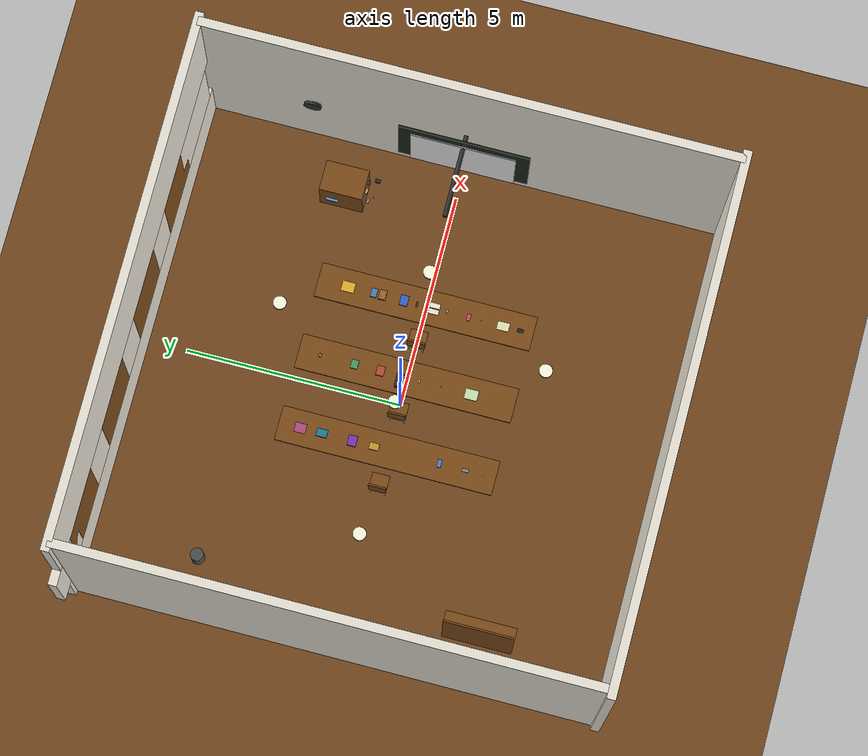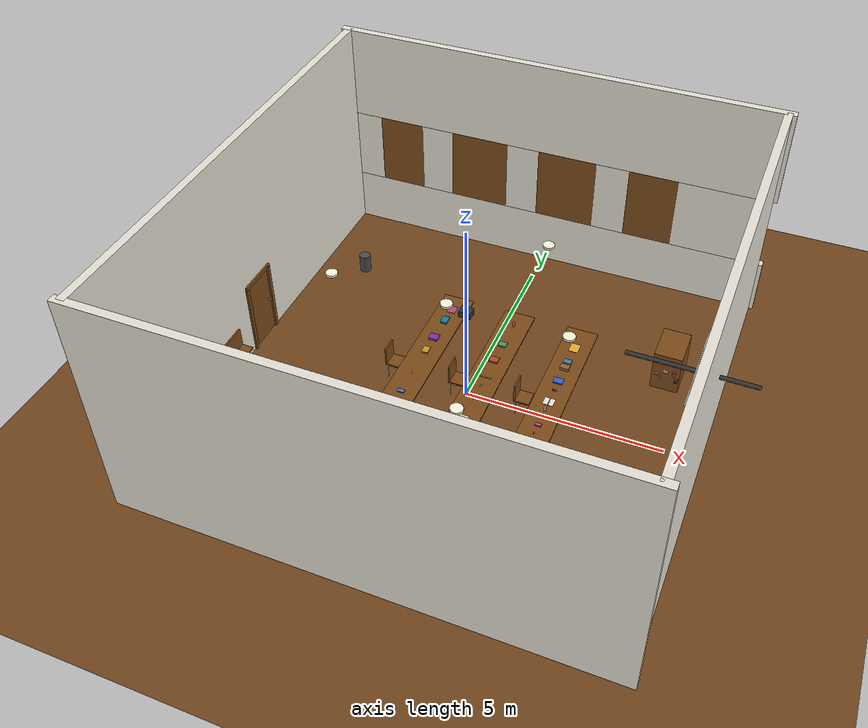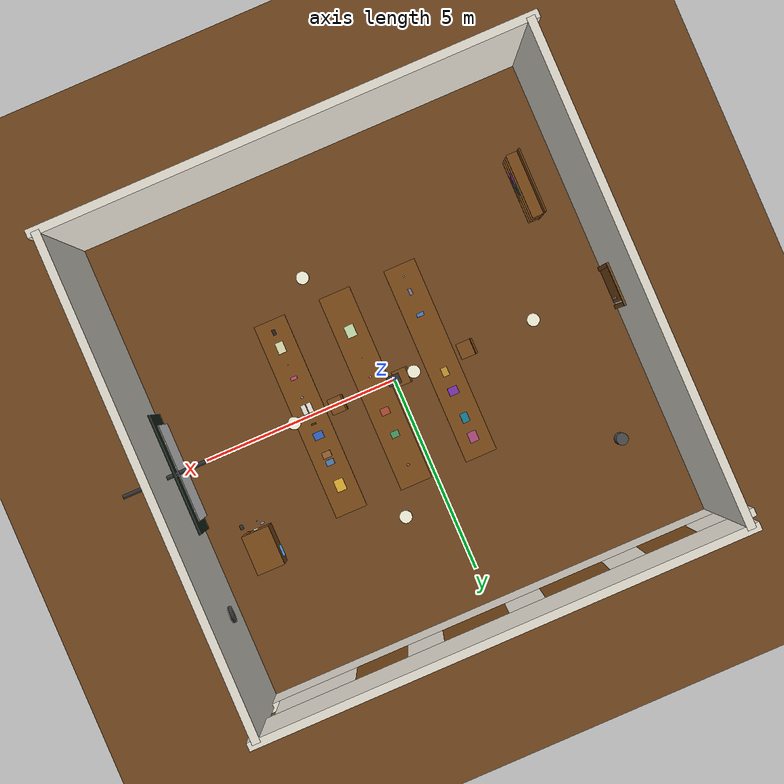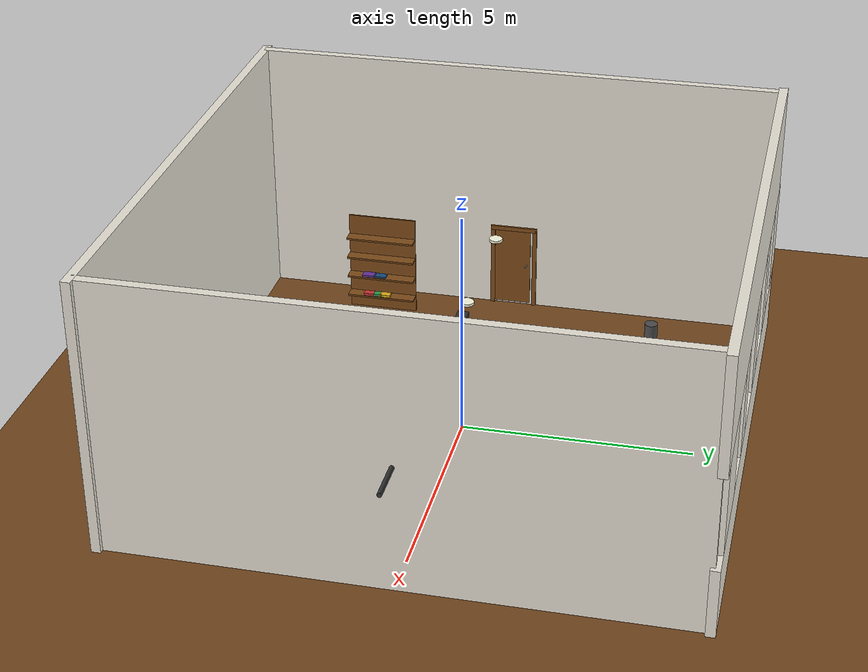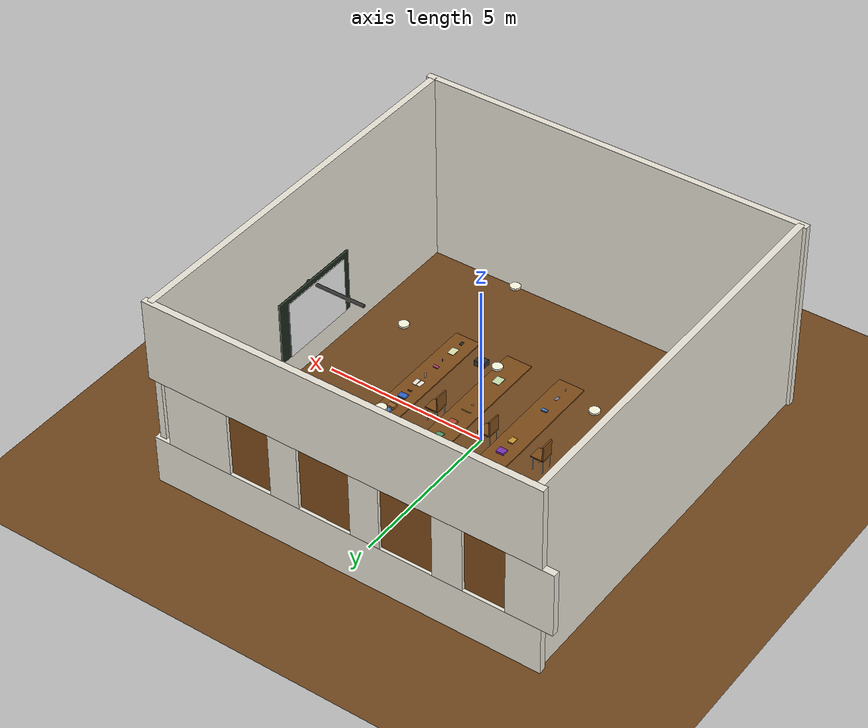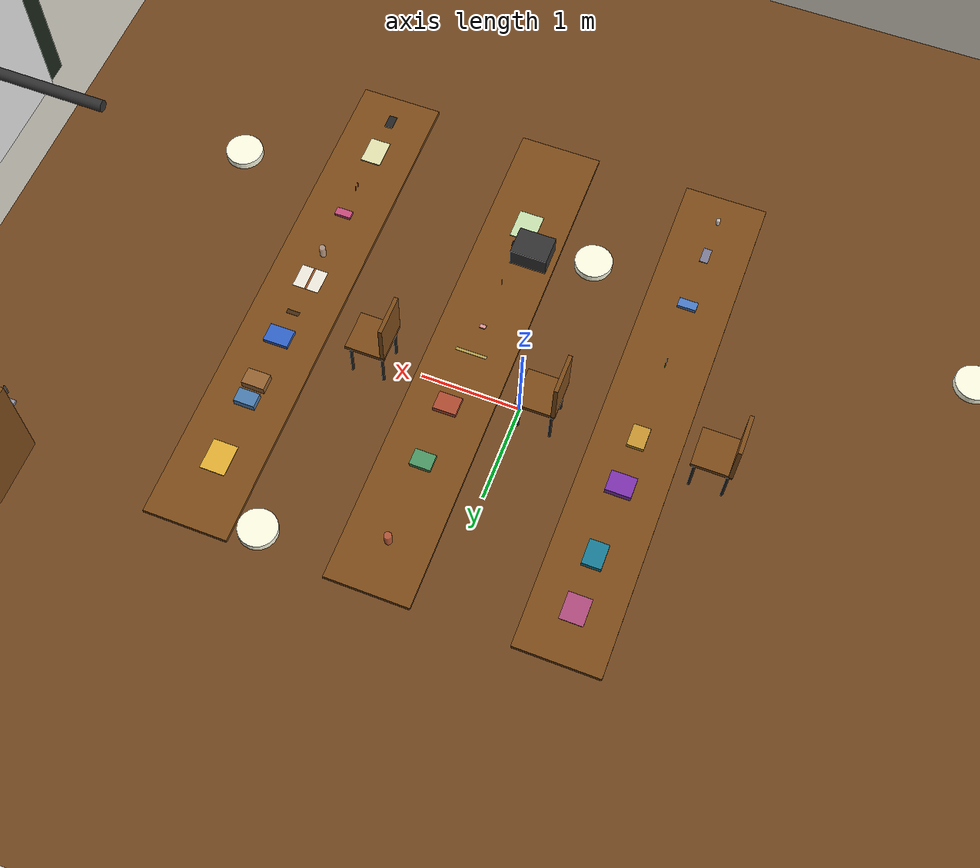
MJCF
<mujoco model="Classroom_Final_Fixed">
    <compiler angle="degree" coordinate="local" inertiafromgeom="true"/>
    <option timestep="0.005" gravity="0 0 -9.81"/>

    <visual>
        <quality shadowsize="8192" offsamples="8"/>
        <rgba haze="0.4 0.35 0.3 1"/>
        <global azimuth="150" elevation="-25"/>
    </visual>

    <asset>
        <texture name="tex_floor" type="2d" builtin="checker" rgb1="0.5 0.35 0.2" rgb2="0.45 0.3 0.15" width="512" height="512"/>
        <texture name="tex_wood" type="cube" builtin="flat" rgb1="0.5 0.3 0.1" width="512" height="512"/>
        <texture name="tex_wood_floor" type="2d" builtin="flat" rgb1="0.45 0.28 0.12" width="512" height="512" mark="edge" markrgb="0.35 0.22 0.1"/>
        <material name="mat_floor" texture="tex_wood_floor" texrepeat="8 8" reflectance="0.05" shininess="0.2"/>
        <material name="mat_wood" texture="tex_wood" reflectance="0.02" shininess="0.1"/>
        <material name="mat_lamp" rgba="1 1 0.9 1" emission="1"/>
        <material name="mat_blackboard" rgba="0.1 0.15 0.1 1" shininess="0.3"/>
        <material name="mat_screen" rgba="0.95 0.95 0.95 1" reflectance="0.1"/>
        <material name="mat_metal" rgba="0.6 0.6 0.65 1" shininess="0.8" reflectance="0.3"/>
        <material name="mat_plastic" rgba="0.2 0.2 0.2 1" shininess="0.5"/>
        <material name="mat_wall" rgba="0.92 0.90 0.85 1" shininess="0.1"/>
        <material name="mat_glass" rgba="0.7 0.85 0.95 0.4" shininess="0.8" reflectance="0.2"/>
    </asset>

    <worldbody>
        <light directional="true" pos="-5 8 3" dir="1 -0.8 -0.4" diffuse="0.8 0.5 0.2" castshadow="true"/>
        <light directional="true" pos="10 -5 8" dir="-1 0.5 -0.8" diffuse="0.6 0.7 0.8" castshadow="false"/>

        <geom name="floor" size="10 10 0.1" type="plane" material="mat_floor"/>

        <!-- 天花板灯具 -->
        <body name="lamp_1" pos="2.5 0 2.8">
            <geom type="cylinder" size="0.15 0.03" material="mat_lamp"/>
            <light name="light_1" pos="0 0 -0.1" dir="0 0 -1" diffuse="0.6 0.6 0.5" cutoff="45" castshadow="true"/>
        </body>
        <body name="lamp_2" pos="-0.5 0 2.8">
            <geom type="cylinder" size="0.15 0.03" material="mat_lamp"/>
            <light name="light_2" pos="0 0 -0.1" dir="0 0 -1" diffuse="0.6 0.6 0.5" cutoff="45" castshadow="true"/>
        </body>
        <body name="lamp_3" pos="-3.5 0 2.8">
            <geom type="cylinder" size="0.15 0.03" material="mat_lamp"/>
            <light name="light_3" pos="0 0 -0.1" dir="0 0 -1" diffuse="0.6 0.6 0.5" cutoff="45" castshadow="true"/>
        </body>
        <body name="lamp_4" pos="1.0 3 2.8">
            <geom type="cylinder" size="0.15 0.03" material="mat_lamp"/>
            <light name="light_4" pos="0 0 -0.1" dir="0 0 -1" diffuse="0.6 0.6 0.5" cutoff="45" castshadow="true"/>
        </body>
        <body name="lamp_5" pos="1.0 -3 2.8">
            <geom type="cylinder" size="0.15 0.03" material="mat_lamp"/>
            <light name="light_5" pos="0 0 -0.1" dir="0 0 -1" diffuse="0.6 0.6 0.5" cutoff="45" castshadow="true"/>
        </body>

        <!-- 墙壁 -->
        <!-- 前墙（讲台侧，带黑板） -->
        <geom name="front_wall" type="box" size="0.1 6 3" pos="5.8 0 3" material="mat_wall"/>

        <!-- 后墙（学生后面） -->
        <geom name="back_wall" type="box" size="0.1 6 3" pos="-5.8 0 3" material="mat_wall"/>

        <!-- 门框 -->
        <geom name="door_frame_left" type="box" size="0.1 0.05 1.0" pos="-5.75 -0.5 1.0" material="mat_wood"/>
        <geom name="door_frame_right" type="box" size="0.1 0.05 1.0" pos="-5.75 0.5 1.0" material="mat_wood"/>
        <geom name="door_frame_top" type="box" size="0.1 0.55 0.05" pos="-5.75 0 2.0" material="mat_wood"/>

        <!-- 可开关的木门 -->
        <body name="wooden_door" pos="-5.7 -0.5 0.05">
            <joint name="door_hinge" type="hinge" axis="0 0 1" pos="0 0 0" range="0 120" damping="2"/>
            <geom name="door_panel" type="box" size="0.03 0.45 0.95" pos="0 0.45 0.95" material="mat_wood" mass="15"/>
            <geom name="door_handle" type="cylinder" size="0.02 0.08" pos="0.05 0.8 1.0" quat="0.707 0 0.707 0" material="mat_metal" mass="0.3"/>
        </body>

        <!-- 左墙 -->
        <geom name="left_wall" type="box" size="6 0.1 3" pos="0 -6 3" material="mat_wall"/>

        <!-- 右墙（分段，为窗户留空） -->
        <!-- 右墙下段（窗户下方，从地面到窗户底部） -->
        <geom name="right_wall_bottom" type="box" size="6 0.1 0.75" pos="0 6 0.75" material="mat_wall"/>

        <!-- 右墙上段（窗户上方，从窗户顶部到天花板） -->
        <geom name="right_wall_top" type="box" size="6 0.1 1.25" pos="0 6 4.75" material="mat_wall"/>

        <!-- 窗户之间的墙段 -->
        <geom name="right_wall_segment1" type="box" size="1.0 0.1 1.0" pos="4.5 6 2.5" material="mat_wall"/>
        <geom name="right_wall_segment2" type="box" size="0.45 0.1 1.0" pos="1.75 6 2.5" material="mat_wall"/>
        <geom name="right_wall_segment3" type="box" size="0.45 0.1 1.0" pos="-0.75 6 2.5" material="mat_wall"/>
        <geom name="right_wall_segment4" type="box" size="0.45 0.1 1.0" pos="-3.25 6 2.5" material="mat_wall"/>
        <geom name="right_wall_segment5" type="box" size="0.7 0.1 1.0" pos="-5.65 6 2.5" material="mat_wall"/>

        <!-- 窗户（在右墙上） -->
        <!-- 窗户1 -->
        <geom name="window_frame_1" type="box" size="0.8 0.05 1.0" pos="3 5.95 2.5" material="mat_wood"/>
        <geom name="window_glass_1" type="box" size="0.75 0.02 0.95" pos="3 5.95 2.5" material="mat_glass" contype="0" conaffinity="0"/>
        <light name="window_light_1" pos="3 6.5 2.5" dir="0 -1 0" diffuse="0.5 0.6 0.7" cutoff="60" castshadow="false"/>

        <!-- 窗户2 -->
        <geom name="window_frame_2" type="box" size="0.8 0.05 1.0" pos="0.5 5.95 2.5" material="mat_wood"/>
        <geom name="window_glass_2" type="box" size="0.75 0.02 0.95" pos="0.5 5.95 2.5" material="mat_glass" contype="0" conaffinity="0"/>
        <light name="window_light_2" pos="0.5 6.5 2.5" dir="0 -1 0" diffuse="0.5 0.6 0.7" cutoff="60" castshadow="false"/>

        <!-- 窗户3 -->
        <geom name="window_frame_3" type="box" size="0.8 0.05 1.0" pos="-2 5.95 2.5" material="mat_wood"/>
        <geom name="window_glass_3" type="box" size="0.75 0.02 0.95" pos="-2 5.95 2.5" material="mat_glass" contype="0" conaffinity="0"/>
        <light name="window_light_3" pos="-2 6.5 2.5" dir="0 -1 0" diffuse="0.5 0.6 0.7" cutoff="60" castshadow="false"/>

        <!-- 窗户4 -->
        <geom name="window_frame_4" type="box" size="0.8 0.05 1.0" pos="-4.5 5.95 2.5" material="mat_wood"/>
        <geom name="window_glass_4" type="box" size="0.75 0.02 0.95" pos="-4.5 5.95 2.5" material="mat_glass" contype="0" conaffinity="0"/>
        <light name="window_light_4" pos="-4.5 6.5 2.5" dir="0 -1 0" diffuse="0.5 0.6 0.7" cutoff="60" castshadow="false"/>

        <geom name="podium" type="box" size="0.35 0.5 0.55" pos="4.5 2.5 0.55" material="mat_wood"/>
        <geom name="desk_1" type="box" size="0.4 2.5 0.02" pos="2.2 0 0.75" material="mat_wood"/>
        <geom name="desk_2" type="box" size="0.4 2.5 0.02" pos="0.5 0 0.75" material="mat_wood"/>
        <geom name="desk_3" type="box" size="0.4 2.5 0.02" pos="-1.2 0 0.75" material="mat_wood"/>

        <body name="chair_interactive" pos="1.5 0 0">
            <freejoint/>
            <geom name="seat" type="box" size="0.2 0.2 0.02" pos="0 0 0.45" material="mat_wood" mass="2"/>
            <geom name="backrest" type="box" size="0.02 0.2 0.25" pos="-0.18 0 0.7" material="mat_wood" mass="1"/>
            <geom name="leg1" type="cylinder" size="0.015 0.22" pos="0.16 0.16 0.22" rgba="0.1 0.1 0.1 1" mass="0.3"/>
            <geom name="leg2" type="cylinder" size="0.015 0.22" pos="-0.16 0.16 0.22" rgba="0.1 0.1 0.1 1" mass="0.3"/>
            <geom name="leg3" type="cylinder" size="0.015 0.22" pos="0.16 -0.16 0.22" rgba="0.1 0.1 0.1 1" mass="0.3"/>
            <geom name="leg4" type="cylinder" size="0.015 0.22" pos="-0.16 -0.16 0.22" rgba="0.1 0.1 0.1 1" mass="0.3"/>
        </body>

        <body name="chair_2" pos="-0.2 0 0">
            <freejoint/>
            <geom name="seat2" type="box" size="0.2 0.2 0.02" pos="0 0 0.45" material="mat_wood" mass="2"/>
            <geom name="backrest2" type="box" size="0.02 0.2 0.25" pos="-0.18 0 0.7" material="mat_wood" mass="1"/>
            <geom name="leg2_1" type="cylinder" size="0.015 0.22" pos="0.16 0.16 0.22" rgba="0.1 0.1 0.1 1" mass="0.3"/>
            <geom name="leg2_2" type="cylinder" size="0.015 0.22" pos="-0.16 0.16 0.22" rgba="0.1 0.1 0.1 1" mass="0.3"/>
            <geom name="leg2_3" type="cylinder" size="0.015 0.22" pos="0.16 -0.16 0.22" rgba="0.1 0.1 0.1 1" mass="0.3"/>
            <geom name="leg2_4" type="cylinder" size="0.015 0.22" pos="-0.16 -0.16 0.22" rgba="0.1 0.1 0.1 1" mass="0.3"/>
        </body>

        <body name="chair_3" pos="-1.9 0 0">
            <freejoint/>
            <geom name="seat3" type="box" size="0.2 0.2 0.02" pos="0 0 0.45" material="mat_wood" mass="2"/>
            <geom name="backrest3" type="box" size="0.02 0.2 0.25" pos="-0.18 0 0.7" material="mat_wood" mass="1"/>
            <geom name="leg3_1" type="cylinder" size="0.015 0.22" pos="0.16 0.16 0.22" rgba="0.1 0.1 0.1 1" mass="0.3"/>
            <geom name="leg3_2" type="cylinder" size="0.015 0.22" pos="-0.16 0.16 0.22" rgba="0.1 0.1 0.1 1" mass="0.3"/>
            <geom name="leg3_3" type="cylinder" size="0.015 0.22" pos="0.16 -0.16 0.22" rgba="0.1 0.1 0.1 1" mass="0.3"/>
            <geom name="leg3_4" type="cylinder" size="0.015 0.22" pos="-0.16 -0.16 0.22" rgba="0.1 0.1 0.1 1" mass="0.3"/>
        </body>

        <body name="book" pos="2.2 0.5 0.82">
            <freejoint/>
            <geom size="0.12 0.09 0.02" rgba="0.2 0.4 0.8 1" type="box" mass="0.5"/>
        </body>

        <!-- 可翻开的书（带动画效果） -->
        <body name="open_book" pos="2.2 -0.2 0.78">
            <freejoint/>
            <!-- 书脊和底座 -->
            <geom name="book_spine" type="box" size="0.01 0.12 0.001" pos="0 0 0" rgba="0.6 0.3 0.1 1" mass="0.1"/>

            <!-- 左页 -->
            <body name="left_page" pos="-0.07 0 0.001">
                <joint name="left_page_hinge" type="hinge" axis="0 1 0" pos="0.06 0 0" range="-90 90" damping="0.1"/>
                <geom name="left_page_geom" type="box" size="0.06 0.12 0.0005" pos="0 0 0" rgba="0.95 0.93 0.88 1" mass="0.05"/>
            </body>

            <!-- 右页 -->
            <body name="right_page" pos="0.07 0 0.001">
                <joint name="right_page_hinge" type="hinge" axis="0 1 0" pos="-0.06 0 0" range="-90 90" damping="0.1"/>
                <geom name="right_page_geom" type="box" size="0.06 0.12 0.0005" pos="0 0 0" rgba="0.95 0.93 0.88 1" mass="0.05"/>
            </body>
        </body>

        <body name="cup" pos="2.2 -0.5 0.82">
            <freejoint/>
            <geom size="0.03 0.07" rgba="0.9 0.9 1 0.5" type="cylinder" mass="0.2"/>
        </body>

        <!-- 黑板 -->
        <geom name="blackboard" type="box" size="0.02 1.5 1.0" pos="5.5 0 2.0" material="mat_blackboard"/>

        <!-- 投影幕布 (卷起状态) -->
        <geom name="screen_case" type="cylinder" size="0.05 1.5" pos="5.3 0 2.8" quat="0.707 0 0.707 0" material="mat_plastic"/>

        <!-- 投影幕布 (展开状态，固定在墙上) -->
        <body name="projector_screen" pos="5.4 0 2.0">
            <geom name="screen_surface" type="box" size="0.01 1.2 0.9" material="mat_screen" mass="1.5"/>
        </body>

        <!-- 投影仪 (固定在天花板) -->
        <body name="projector" pos="0 0 2.7">
            <geom name="projector_body" type="box" size="0.15 0.12 0.08" material="mat_plastic" mass="2.5"/>
            <geom name="projector_lens" type="cylinder" size="0.03 0.02" pos="0.15 0 0" quat="0.707 0 0.707 0" rgba="0.1 0.1 0.15 0.8" mass="0.1"/>
        </body>

        <!-- 讲台上的笔记本电脑 -->
        <body name="laptop" pos="4.5 2.5 0.62">
            <freejoint/>
            <geom name="laptop_base" type="box" size="0.15 0.1 0.01" rgba="0.15 0.15 0.15 1" mass="0.8"/>
            <geom name="laptop_screen" type="box" size="0.15 0.005 0.12" pos="0 -0.08 0.11" quat="0.966 0.259 0 0" rgba="0.1 0.1 0.1 1" mass="0.4"/>
        </body>

        <!-- 书架 -->
        <geom name="bookshelf_back" type="box" size="0.02 0.8 1.2" pos="-4.8 -3.0 1.2" material="mat_wood"/>
        <geom name="bookshelf_bottom" type="box" size="0.15 0.8 0.02" pos="-4.65 -3.0 0.4" material="mat_wood"/>
        <geom name="bookshelf_mid1" type="box" size="0.15 0.8 0.02" pos="-4.65 -3.0 0.9" material="mat_wood"/>
        <geom name="bookshelf_mid2" type="box" size="0.15 0.8 0.02" pos="-4.65 -3.0 1.4" material="mat_wood"/>
        <geom name="bookshelf_top" type="box" size="0.15 0.8 0.02" pos="-4.65 -3.0 1.9" material="mat_wood"/>

        <!-- 书架上的书籍 -->
        <body name="book_2" pos="-4.6 -3.3 0.45">
            <freejoint/>
            <geom type="box" size="0.08 0.12 0.03" rgba="0.8 0.2 0.2 1" mass="0.6"/>
        </body>
        <body name="book_3" pos="-4.6 -3.1 0.45">
            <freejoint/>
            <geom type="box" size="0.08 0.12 0.03" rgba="0.2 0.6 0.3 1" mass="0.5"/>
        </body>
        <body name="book_4" pos="-4.6 -2.9 0.45">
            <freejoint/>
            <geom type="box" size="0.08 0.12 0.03" rgba="0.9 0.7 0.1 1" mass="0.55"/>
        </body>
        <body name="book_5" pos="-4.6 -3.3 0.95">
            <freejoint/>
            <geom type="box" size="0.1 0.14 0.025" rgba="0.4 0.2 0.6 1" mass="0.7"/>
        </body>
        <body name="book_6" pos="-4.6 -3.0 0.95">
            <freejoint/>
            <geom type="box" size="0.09 0.13 0.02" rgba="0.1 0.3 0.5 1" mass="0.45"/>
        </body>

        <!-- 桌面上更多书籍 -->
        <body name="book_stack_1" pos="2.2 1.0 0.82">
            <freejoint/>
            <geom type="box" size="0.11 0.08 0.04" rgba="0.6 0.4 0.2 1" mass="0.8"/>
        </body>
        <body name="book_stack_2" pos="2.2 1.2 0.82">
            <freejoint/>
            <geom type="box" size="0.10 0.07 0.035" rgba="0.3 0.5 0.7 1" mass="0.6"/>
        </body>

        <!-- 文具用品 -->
        <body name="pencil_case" pos="2.2 -1.0 0.78">
            <freejoint/>
            <geom type="box" size="0.08 0.04 0.02" rgba="0.8 0.3 0.5 1" mass="0.15"/>
        </body>

        <body name="pen_1" pos="2.2 -1.3 0.77">
            <freejoint/>
            <geom type="cylinder" size="0.004 0.07" rgba="0.1 0.1 0.8 1" mass="0.01"/>
        </body>

        <body name="pen_2" pos="2.2 -1.35 0.77">
            <freejoint/>
            <geom type="cylinder" size="0.004 0.07" rgba="0.8 0.1 0.1 1" mass="0.01"/>
        </body>

        <body name="notebook" pos="2.2 -1.8 0.77">
            <freejoint/>
            <geom type="box" size="0.10 0.14 0.01" rgba="0.9 0.9 0.7 1" mass="0.3"/>
        </body>

        <!-- 讲台上的教学用品 -->
        <body name="chalk_box" pos="4.5 2.0 0.62">
            <freejoint/>
            <geom type="box" size="0.06 0.04 0.025" rgba="0.9 0.85 0.7 1" mass="0.1"/>
        </body>

        <body name="eraser" pos="4.3 2.3 0.58">
            <freejoint/>
            <geom type="box" size="0.05 0.03 0.015" rgba="0.95 0.95 0.8 1" mass="0.05"/>
        </body>

        <body name="marker_1" pos="4.4 1.8 0.57">
            <freejoint/>
            <geom type="cylinder" size="0.008 0.06" rgba="0.1 0.1 0.1 1" mass="0.02"/>
        </body>

        <!-- 水瓶 -->
        <body name="water_bottle" pos="4.7 2.5 0.58">
            <freejoint/>
            <geom name="bottle_body" type="cylinder" size="0.035 0.10" rgba="0.7 0.9 1.0 0.6" mass="0.5"/>
            <geom name="bottle_cap" type="cylinder" size="0.025 0.015" pos="0 0 0.115" rgba="0.2 0.4 0.8 1" mass="0.02"/>
        </body>

        <!-- 垃圾桶 -->
        <body name="trash_bin" pos="-4.5 3.5 0.25">
            <freejoint/>
            <geom type="cylinder" size="0.15 0.25" rgba="0.3 0.3 0.3 1" mass="1.5"/>
        </body>

        <!-- 时钟 (挂在墙上) -->
        <geom name="clock" type="cylinder" size="0.2 0.03" pos="5.6 3.5 2.5" quat="0.707 0 0.707 0" material="mat_plastic"/>
        <geom name="clock_face" type="cylinder" size="0.18 0.01" pos="5.65 3.5 2.5" quat="0.707 0 0.707 0" rgba="1 1 1 1"/>

        <!-- 文件夹 -->
        <body name="folder_1" pos="2.2 1.8 0.77">
            <freejoint/>
            <geom type="box" size="0.12 0.15 0.005" rgba="0.9 0.7 0.2 1" mass="0.2"/>
        </body>

        <body name="folder_2" pos="4.2 2.7 0.57">
            <freejoint/>
            <geom type="box" size="0.11 0.14 0.005" rgba="0.3 0.6 0.9 1" mass="0.18"/>
        </body>

        <!-- 笔筒 -->
        <body name="pen_holder" pos="4.7 2.0 0.58">
            <freejoint/>
            <geom type="cylinder" size="0.04 0.06" rgba="0.6 0.3 0.2 1" mass="0.3"/>
        </body>

        <!-- 计算器 -->
        <body name="calculator" pos="2.2 -2.2 0.77">
            <freejoint/>
            <geom type="box" size="0.04 0.07 0.008" rgba="0.15 0.15 0.15 1" mass="0.15"/>
        </body>

        <!-- 订书机 -->
        <body name="stapler" pos="4.3 1.9 0.57">
            <freejoint/>
            <geom type="box" size="0.05 0.025 0.015" material="mat_metal" mass="0.25"/>
        </body>

        <!-- 胶带座 -->
        <body name="tape_dispenser" pos="4.8 1.8 0.58">
            <freejoint/>
            <geom name="tape_base" type="box" size="0.04 0.06 0.02" material="mat_plastic" mass="0.2"/>
            <geom name="tape_roll" type="cylinder" size="0.025 0.01" pos="0 0.02 0.025" quat="0.707 0.707 0 0" rgba="0.9 0.9 0.7 0.7" mass="0.05"/>
        </body>

        <!-- 眼镜 -->
        <body name="glasses" pos="2.2 0.2 0.78">
            <freejoint/>
            <geom type="box" size="0.06 0.02 0.005" rgba="0.1 0.1 0.1 0.5" mass="0.03"/>
        </body>

        <!-- desk_2 上的物品 -->
        <body name="book_desk2_1" pos="0.5 0.6 0.82">
            <freejoint/>
            <geom type="box" size="0.11 0.09 0.025" rgba="0.7 0.3 0.2 1" mass="0.55"/>
        </body>

        <body name="book_desk2_2" pos="0.5 1.2 0.82">
            <freejoint/>
            <geom type="box" size="0.10 0.08 0.02" rgba="0.3 0.6 0.4 1" mass="0.5"/>
        </body>

        <body name="pencil_desk2" pos="0.5 -0.8 0.77">
            <freejoint/>
            <geom type="cylinder" size="0.004 0.08" rgba="0.9 0.7 0.1 1" mass="0.01"/>
        </body>

        <body name="notebook_desk2" pos="0.5 -1.5 0.77">
            <freejoint/>
            <geom type="box" size="0.12 0.15 0.01" rgba="0.8 0.9 0.7 1" mass="0.35"/>
        </body>

        <body name="eraser_desk2" pos="0.5 -0.3 0.77">
            <freejoint/>
            <geom type="box" size="0.03 0.02 0.01" rgba="0.9 0.6 0.6 1" mass="0.02"/>
        </body>

        <body name="ruler_desk2" pos="0.5 0 0.77">
            <freejoint/>
            <geom type="box" size="0.15 0.015 0.002" rgba="0.9 0.9 0.5 0.6" mass="0.03"/>
        </body>

        <body name="cup_desk2" pos="0.5 2.0 0.82">
            <freejoint/>
            <geom type="cylinder" size="0.035 0.08" rgba="0.8 0.4 0.3 0.8" mass="0.25"/>
        </body>

        <!-- desk_3 上的物品 -->
        <body name="book_desk3_1" pos="-1.2 0.8 0.82">
            <freejoint/>
            <geom type="box" size="0.12 0.10 0.03" rgba="0.5 0.2 0.7 1" mass="0.65"/>
        </body>

        <body name="book_desk3_2" pos="-1.2 1.5 0.82">
            <freejoint/>
            <geom type="box" size="0.09 0.12 0.025" rgba="0.1 0.5 0.6 1" mass="0.55"/>
        </body>

        <body name="book_desk3_3" pos="-1.2 0.3 0.82">
            <freejoint/>
            <geom type="box" size="0.08 0.11 0.02" rgba="0.8 0.6 0.2 1" mass="0.45"/>
        </body>

        <body name="pencil_case_desk3" pos="-1.2 -1.2 0.78">
            <freejoint/>
            <geom type="box" size="0.09 0.045 0.025" rgba="0.3 0.5 0.8 1" mass="0.18"/>
        </body>

        <body name="pen_desk3_1" pos="-1.2 -0.5 0.77">
            <freejoint/>
            <geom type="cylinder" size="0.004 0.07" rgba="0.2 0.7 0.2 1" mass="0.01"/>
        </body>

        <body name="pen_desk3_2" pos="-1.2 -0.55 0.77">
            <freejoint/>
            <geom type="cylinder" size="0.004 0.07" rgba="0.1 0.1 0.1 1" mass="0.01"/>
        </body>

        <body name="folder_desk3" pos="-1.2 2.0 0.77">
            <freejoint/>
            <geom type="box" size="0.11 0.13 0.005" rgba="0.7 0.3 0.5 1" mass="0.2"/>
        </body>

        <body name="scissors_desk3" pos="-1.2 -1.8 0.77">
            <freejoint/>
            <geom type="box" size="0.04 0.08 0.005" rgba="0.5 0.5 0.6 1" mass="0.08"/>
        </body>

        <body name="glue_desk3" pos="-1.2 -2.2 0.78">
            <freejoint/>
            <geom type="cylinder" size="0.02 0.05" rgba="0.9 0.9 0.95 0.8" mass="0.1"/>
        </body>

    </worldbody>

    <actuator>
        <!-- 书页翻动控制器 -->
        <position name="left_page_actuator" joint="left_page_hinge" kp="5" ctrlrange="-90 90"/>
        <position name="right_page_actuator" joint="right_page_hinge" kp="5" ctrlrange="-90 90"/>

        <!-- 门开关控制器 -->
        <position name="door_actuator" joint="door_hinge" kp="50" ctrlrange="0 120"/>
    </actuator>
</mujoco>
